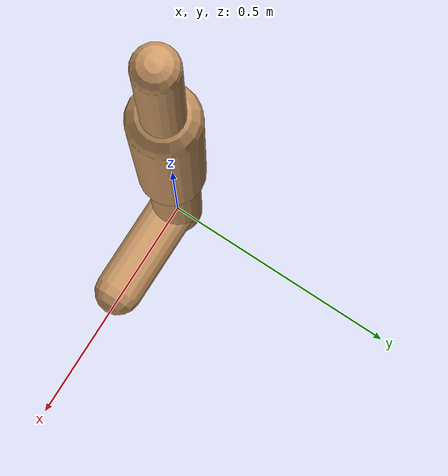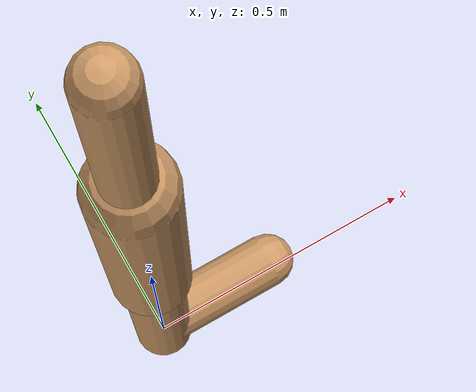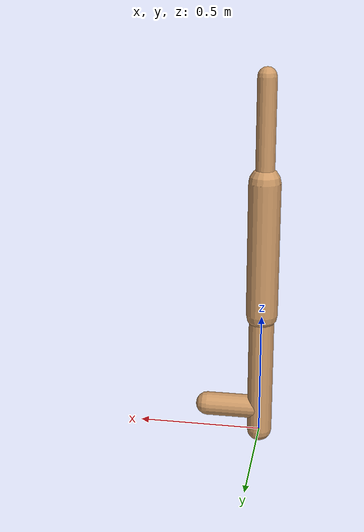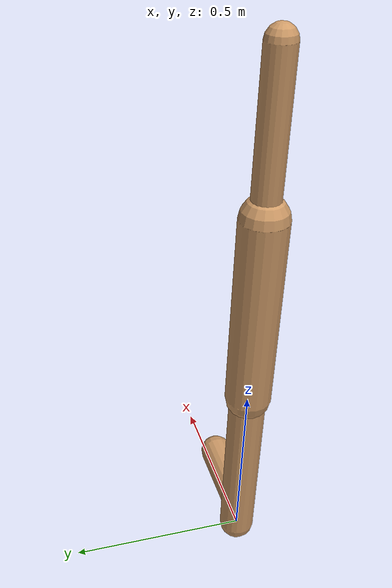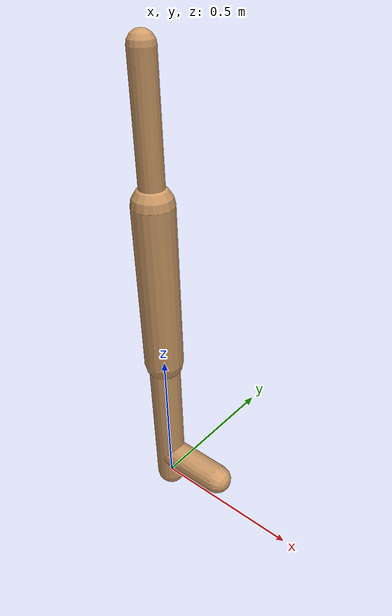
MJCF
<mujoco model="walker2d">
  <compiler angle="degree" coordinate="global" inertiafromgeom="true" />
  <default>
    <joint armature="0.01" damping=".1" limited="true" />
    <geom conaffinity="0" condim="3" contype="1" density="1000" friction="0.8 .1 .1" rgba="0.8 0.6 .4 1" />
  </default>
  <option integrator="RK4" timestep="0.002" />
  <worldbody>

    <body name="torso" pos="0 0 0.18644217618779094">
      <joint armature="0" axis="1 0 0" damping="0" limited="false" name="ignorex" pos="0 0 0" stiffness="0" type="slide" />
      <joint armature="0" axis="0 0 1" damping="0" limited="false" name="ignorez" pos="0 0 0" ref="1.25" stiffness="0" type="slide" />
      <joint armature="0" axis="0 1 0" damping="0" limited="false" name="ignorey" pos="0 0 0" stiffness="0" type="hinge" />
      <geom fromto="0 0 1.45 0 0 1.05" name="torso_geom" size="0.03742378083799526" type="capsule" />
      <body name="thigh">
        <joint axis="0 -1 0" name="thigh_joint" pos="0 0 1.05" range="-150 0" type="hinge" />
        <geom fromto="0.0 0.0 1.05 0.0 0.0 0.5116852849636779" name="thigh_geom" size="0.06334354899075055" type="capsule" />
        <body name="leg" pos="0.0 0.0 -0.08831471503632204">
          <joint axis="0 -1 0" name="leg_joint" pos="0 0 0.6" range="-150 0" type="hinge" />
          <geom fromto="0.0 0.0 0.6 0.0 0.0 0.0018725388485310995" name="leg_geom" size="0.050674839192600435" type="capsule" />
          <body name="foot" pos="0.0 0.0 -0.0981274611514689">
            <joint axis="0 -1 0" name="foot_joint" pos="0 0 0.1" range="-45 45" type="hinge" />
            <geom fromto="-0.0 0.0 0.1 0.21697843459633226 0.0 0.1" name="foot_geom" size="0.04842390487676172" type="capsule" />
          </body>
        </body>
      </body>

      <body name="thigh_left">
        <joint axis="0 -1 0" name="thigh_left_joint" pos="0 0 1.05" range="-150 0" type="hinge" />
        <geom fromto="0.0 0.0 1.05 0.0 0.0 0.5116852849636779" name="thigh_left_geom" rgba=".7 .3 .6 1" size="0.06334354899075055" type="capsule" />
        <body name="leg_left" pos="0.0 0.0 -0.08831471503632204">
          <joint axis="0 -1 0" name="leg_left_joint" pos="0 0 0.6" range="-150 0" type="hinge" />
          <geom fromto="0.0 0.0 0.6 0.0 0.0 0.0018725388485310995" name="leg_left_geom" rgba=".7 .3 .6 1" size="0.050674839192600435" type="capsule" />
          <body name="foot_left" pos="0.0 0.0 -0.0981274611514689">
            <joint axis="0 -1 0" name="foot_left_joint" pos="0 0 0.1" range="-45 45" type="hinge" />
            <geom fromto="-0.0 0.0 0.1 0.21697843459633226 0.0 0.1" name="foot_left_geom" rgba=".7 .3 .6 1" size="0.04842390487676172" type="capsule" />
          </body>
        </body>
      </body>
    </body>
  </worldbody>
  <actuator>

    <motor ctrllimited="true" ctrlrange="-1.0 1.0" gear="100" joint="thigh_joint" />
    <motor ctrllimited="true" ctrlrange="-1.0 1.0" gear="100" joint="leg_joint" />
    <motor ctrllimited="true" ctrlrange="-1.0 1.0" gear="100" joint="foot_joint" />
    <motor ctrllimited="true" ctrlrange="-1.0 1.0" gear="100" joint="thigh_left_joint" />
    <motor ctrllimited="true" ctrlrange="-1.0 1.0" gear="100" joint="leg_left_joint" />
    <motor ctrllimited="true" ctrlrange="-1.0 1.0" gear="100" joint="foot_left_joint" />

  </actuator>
</mujoco>
